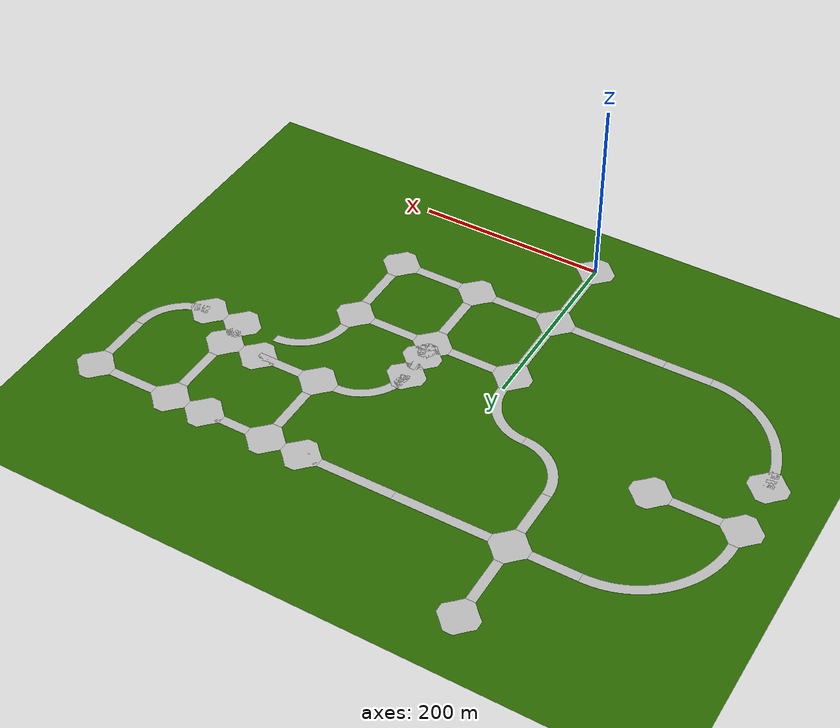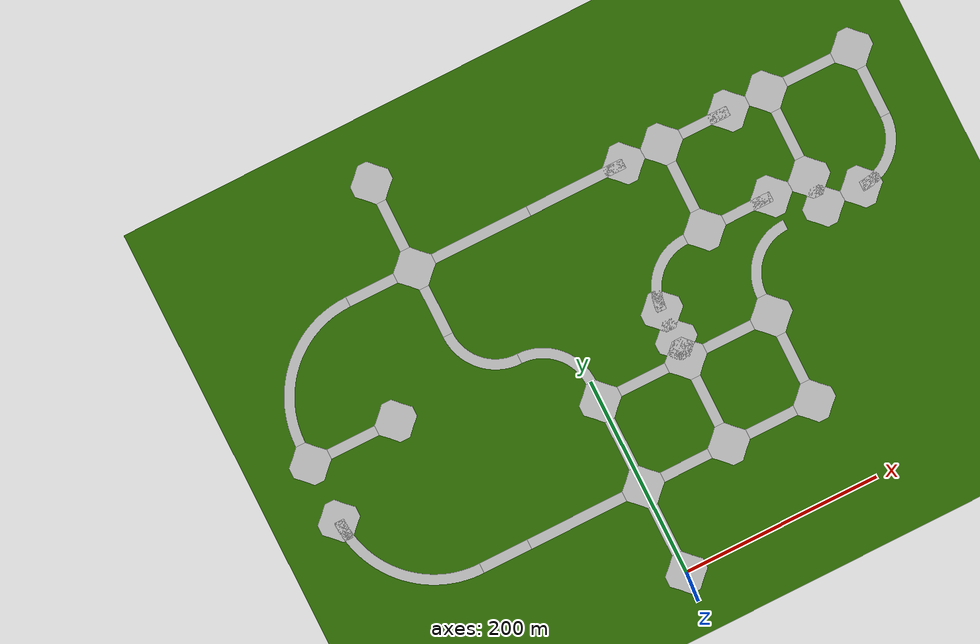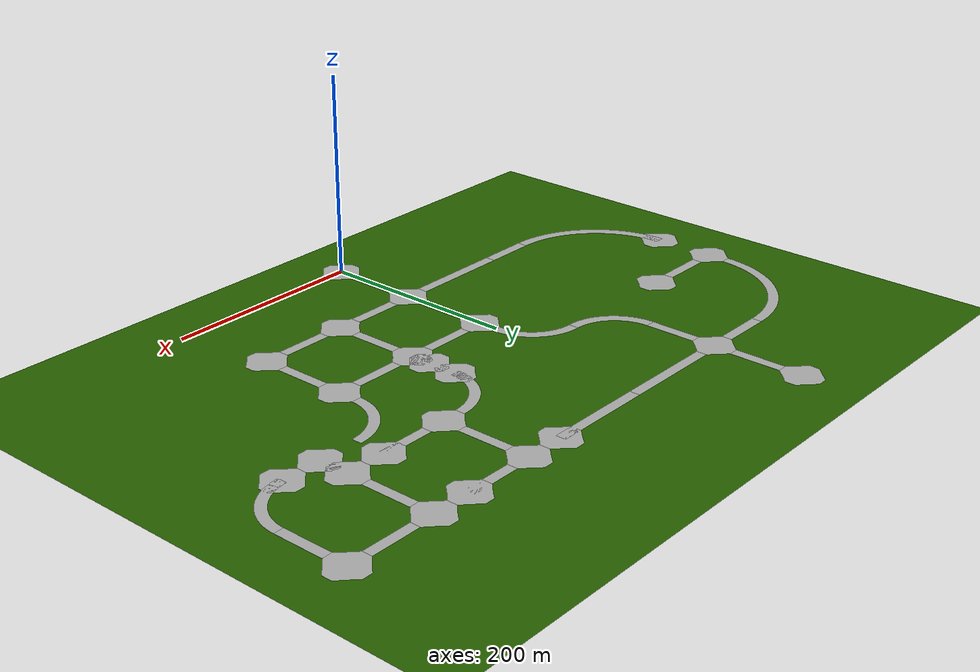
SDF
<sdf version="1.11">
 <world name="empty">
  <plugin name="gz::sim::systems::Physics" filename="gz-sim-physics-system"/>
  <plugin name="gz::sim::systems::UserCommands" filename="gz-sim-user-commands-system"/>
  <plugin name="gz::sim::systems::SceneBroadcaster" filename="gz-sim-scene-broadcaster-system"/>
  <plugin name="gz::sim::systems::Contact" filename="gz-sim-contact-system"/>
  <plugin name="gz::sim::systems::Sensors" filename="gz-sim-sensors-system">
   <render_engine>ogre</render_engine>
  </plugin>
  <physics name="1ms" type="ignored">
   <max_step_size>0.001</max_step_size>
   <real_time_factor>1</real_time_factor>
   <real_time_update_rate>1000</real_time_update_rate>
  </physics>
  <light name="sun" type="directional">
   <pose>0 0 10 0 -0 0</pose>
   <intensity>1</intensity>
   <direction>-0.5 0.1 -0.9</direction>
   <diffuse>0.8 0.8 0.8 1</diffuse>
   <specular>0.2 0.2 0.2 1</specular>
   <attenuation>
    <range>1000</range>
    <linear>0.01</linear>
    <constant>0.90000000000000002</constant>
    <quadratic>0.001</quadratic>
   </attenuation>
   <spot><inner_angle>0</inner_angle><outer_angle>0</outer_angle><falloff>0</falloff></spot>
  </light>
  <scene>
   <ambient>0.4 0.4 0.4 1</ambient>
   <background>0.529 0.808 0.98 1</background>
   <shadows>false</shadows>
   <grid>false</grid>
  </scene>
  <model name="ground_plane">
   <static>true</static>
   <link name="link">
    <collision name="collision">
     <geometry><plane><normal>0 0 1</normal><size>1000 1000</size></plane></geometry>
    </collision>
    <visual name="visual">
     <geometry><plane><normal>0 0 1</normal><size>1000 1000</size></plane></geometry>
     <material>
      <ambient>0.164 0.405 0.0 1</ambient>
      <diffuse>0.164 0.405 0.0 1</diffuse>
      <specular>0.8 0.8 0.8 1</specular>
     </material>
    </visual>
    <pose>0 100 0 0 -0 0</pose>
    <inertial>
     <pose>0 100 0 0 -0 0</pose>
     <mass>1</mass>
     <inertia><ixx>1</ixx><ixy>0</ixy><ixz>0</ixz><iyy>1</iyy><iyz>0</iyz><izz>1</izz></inertia>
    </inertial>
   </link>
   <pose>0 100 0 0 -0 0</pose>
  </model>
  <plugin filename="gz-sim-imu-system" name="gz::sim::systems::Imu"/>
  <gravity>0 0 -9.8</gravity>
  <magnetic_field>6e-06 2.3e-05 -4.2e-05</magnetic_field>
  <atmosphere type="adiabatic"/>
  <plugin filename="gz-sim-navsat-system" name="gz::sim::systems::NavSat"/>
  <spherical_coordinates>
   <surface_model>EARTH_WGS84</surface_model>
   <world_frame_orientation>ENU</world_frame_orientation>
   <latitude_deg>42.672</latitude_deg>
   <longitude_deg>-83.215570</longitude_deg>
   <elevation>0.0</elevation>
   <heading_deg>0.0</heading_deg>
  </spherical_coordinates>
  <model name="intersection0">
   <static>true</static>
   <include merge="true">
    <uri>package://ece5532_gazebo/models/intersection</uri>
    <params>
     <visual element_id="road::road_visual" action="modify">
      <geometry>
       <mesh><uri>package://ece5532_gazebo/models/intersection/meshes/intersection.obj</uri></mesh>
      </geometry>
     </visual>
     <collision element_id="road::road_collision" action="modify">
      <geometry>
       <mesh><uri>package://ece5532_gazebo/models/intersection/meshes/intersection.obj</uri></mesh>
      </geometry>
     </collision>
    </params>
   </include>
  </model>
  <model name="intersection1">
   <static>true</static>
   <pose>0 90 0 0 0 0</pose>
   <include merge="true">
    <uri>package://ece5532_gazebo/models/intersection</uri>
    <params>
     <visual element_id="road::road_visual" action="modify">
      <geometry>
       <mesh><uri>package://ece5532_gazebo/models/intersection/meshes/intersection.obj</uri></mesh>
      </geometry>
     </visual>
     <collision element_id="road::road_collision" action="modify">
      <geometry>
       <mesh><uri>package://ece5532_gazebo/models/intersection/meshes/intersection.obj</uri></mesh>
      </geometry>
     </collision>
    </params>
   </include>
  </model>
  <model name="intersection2">
   <static>true</static>
   <pose>0 180 0 0 0 0</pose>
   <include merge="true">
    <uri>package://ece5532_gazebo/models/intersection</uri>
    <params>
     <visual element_id="road::road_visual" action="modify">
      <geometry>
       <mesh><uri>package://ece5532_gazebo/models/intersection/meshes/intersection.obj</uri></mesh>
      </geometry>
     </visual>
     <collision element_id="road::road_collision" action="modify">
      <geometry>
       <mesh><uri>package://ece5532_gazebo/models/intersection/meshes/intersection.obj</uri></mesh>
      </geometry>
     </collision>
    </params>
   </include>
  </model>
  <model name="intersection3">
   <static>true</static>
   <pose>-100 370 0 0 0 0</pose>
   <include merge="true">
    <uri>package://ece5532_gazebo/models/intersection</uri>
    <params>
     <visual element_id="road::road_visual" action="modify">
      <geometry>
       <mesh><uri>package://ece5532_gazebo/models/intersection/meshes/intersection.obj</uri></mesh>
      </geometry>
     </visual>
     <collision element_id="road::road_collision" action="modify">
      <geometry>
       <mesh><uri>package://ece5532_gazebo/models/intersection/meshes/intersection.obj</uri></mesh>
      </geometry>
     </collision>
    </params>
   </include>
  </model>
  <model name="intersection4">
   <static>true</static>
   <pose>-100 460 0 0 0 0</pose>
   <include merge="true">
    <uri>package://ece5532_gazebo/models/intersection</uri>
    <params>
     <visual element_id="road::road_visual" action="modify">
      <geometry>
       <mesh><uri>package://ece5532_gazebo/models/intersection/meshes/intersection.obj</uri></mesh>
      </geometry>
     </visual>
     <collision element_id="road::road_collision" action="modify">
      <geometry>
       <mesh><uri>package://ece5532_gazebo/models/intersection/meshes/intersection.obj</uri></mesh>
      </geometry>
     </collision>
    </params>
   </include>
  </model>
  <model name="intersection5">
   <static>true</static>
   <pose>160 370 0 0 0 0</pose>
   <include merge="true">
    <uri>package://ece5532_gazebo/models/intersection</uri>
    <params>
     <visual element_id="road::road_visual" action="modify">
      <geometry>
       <mesh><uri>package://ece5532_gazebo/models/intersection/meshes/intersection.obj</uri></mesh>
      </geometry>
     </visual>
     <collision element_id="road::road_collision" action="modify">
      <geometry>
       <mesh><uri>package://ece5532_gazebo/models/intersection/meshes/intersection.obj</uri></mesh>
      </geometry>
     </collision>
    </params>
   </include>
  </model>
  <model name="intersection6">
   <static>true</static>
   <pose>160 280 0 0 0 0</pose>
   <include merge="true">
    <uri>package://ece5532_gazebo/models/intersection</uri>
    <params>
     <visual element_id="road::road_visual" action="modify">
      <geometry>
       <mesh><uri>package://ece5532_gazebo/models/intersection/meshes/intersection.obj</uri></mesh>
      </geometry>
     </visual>
     <collision element_id="road::road_collision" action="modify">
      <geometry>
       <mesh><uri>package://ece5532_gazebo/models/intersection/meshes/intersection.obj</uri></mesh>
      </geometry>
     </collision>
    </params>
   </include>
  </model>
  <model name="intersection7">
   <static>true</static>
   <pose>270 370 0 0 0 0</pose>
   <include merge="true">
    <uri>package://ece5532_gazebo/models/intersection</uri>
    <params>
     <visual element_id="road::road_visual" action="modify">
      <geometry>
       <mesh><uri>package://ece5532_gazebo/models/intersection/meshes/intersection.obj</uri></mesh>
      </geometry>
     </visual>
     <collision element_id="road::road_collision" action="modify">
      <geometry>
       <mesh><uri>package://ece5532_gazebo/models/intersection/meshes/intersection.obj</uri></mesh>
      </geometry>
     </collision>
    </params>
   </include>
  </model>
  <model name="intersection8">
   <static>true</static>
   <pose>360 370 0 0 0 0</pose>
   <include merge="true">
    <uri>package://ece5532_gazebo/models/intersection</uri>
    <params>
     <visual element_id="road::road_visual" action="modify">
      <geometry>
       <mesh><uri>package://ece5532_gazebo/models/intersection/meshes/intersection.obj</uri></mesh>
      </geometry>
     </visual>
     <collision element_id="road::road_collision" action="modify">
      <geometry>
       <mesh><uri>package://ece5532_gazebo/models/intersection/meshes/intersection.obj</uri></mesh>
      </geometry>
     </collision>
    </params>
   </include>
  </model>
  <model name="intersection9">
   <static>true</static>
   <pose>270 280 0 0 0 0</pose>
   <include merge="true">
    <uri>package://ece5532_gazebo/models/intersection</uri>
    <params>
     <visual element_id="road::road_visual" action="modify">
      <geometry>
       <mesh><uri>package://ece5532_gazebo/models/intersection/meshes/intersection.obj</uri></mesh>
      </geometry>
     </visual>
     <collision element_id="road::road_collision" action="modify">
      <geometry>
       <mesh><uri>package://ece5532_gazebo/models/intersection/meshes/intersection.obj</uri></mesh>
      </geometry>
     </collision>
    </params>
   </include>
  </model>
  <model name="intersection10">
   <static>true</static>
   <pose>180 180 0 0 0 0</pose>
   <include merge="true">
    <uri>package://ece5532_gazebo/models/intersection</uri>
    <params>
     <visual element_id="road::road_visual" action="modify">
      <geometry>
       <mesh><uri>package://ece5532_gazebo/models/intersection/meshes/intersection.obj</uri></mesh>
      </geometry>
     </visual>
     <collision element_id="road::road_collision" action="modify">
      <geometry>
       <mesh><uri>package://ece5532_gazebo/models/intersection/meshes/intersection.obj</uri></mesh>
      </geometry>
     </collision>
    </params>
   </include>
  </model>
  <model name="intersection11">
   <static>true</static>
   <pose>180 90 0 0 0 0</pose>
   <include merge="true">
    <uri>package://ece5532_gazebo/models/intersection</uri>
    <params>
     <visual element_id="road::road_visual" action="modify">
      <geometry>
       <mesh><uri>package://ece5532_gazebo/models/intersection/meshes/intersection.obj</uri></mesh>
      </geometry>
     </visual>
     <collision element_id="road::road_collision" action="modify">
      <geometry>
       <mesh><uri>package://ece5532_gazebo/models/intersection/meshes/intersection.obj</uri></mesh>
      </geometry>
     </collision>
    </params>
   </include>
  </model>
  <model name="intersection12">
   <static>true</static>
   <pose>90 90 0 0 0 0</pose>
   <include merge="true">
    <uri>package://ece5532_gazebo/models/intersection</uri>
    <params>
     <visual element_id="road::road_visual" action="modify">
      <geometry>
       <mesh><uri>package://ece5532_gazebo/models/intersection/meshes/intersection.obj</uri></mesh>
      </geometry>
     </visual>
     <collision element_id="road::road_collision" action="modify">
      <geometry>
       <mesh><uri>package://ece5532_gazebo/models/intersection/meshes/intersection.obj</uri></mesh>
      </geometry>
     </collision>
    </params>
   </include>
  </model>
  <model name="intersection13">
   <static>true</static>
   <pose>90 180 0 0 0 0</pose>
   <include merge="true">
    <uri>package://ece5532_gazebo/models/intersection</uri>
    <params>
     <visual element_id="road::road_visual" action="modify">
      <geometry>
       <mesh><uri>package://ece5532_gazebo/models/intersection/meshes/intersection.obj</uri></mesh>
      </geometry>
     </visual>
     <collision element_id="road::road_collision" action="modify">
      <geometry>
       <mesh><uri>package://ece5532_gazebo/models/intersection/meshes/intersection.obj</uri></mesh>
      </geometry>
     </collision>
    </params>
   </include>
  </model>
  <model name="intersection14">
   <static>true</static>
   <pose>-270 250 0 0 0 0</pose>
   <include merge="true">
    <uri>package://ece5532_gazebo/models/intersection</uri>
    <params>
     <visual element_id="road::road_visual" action="modify">
      <geometry>
       <mesh><uri>package://ece5532_gazebo/models/intersection/meshes/intersection.obj</uri></mesh>
      </geometry>
     </visual>
     <collision element_id="road::road_collision" action="modify">
      <geometry>
       <mesh><uri>package://ece5532_gazebo/models/intersection/meshes/intersection.obj</uri></mesh>
      </geometry>
     </collision>
    </params>
   </include>
  </model>
  <model name="intersection15">
   <static>true</static>
   <pose>-180 250 0 0 0 0</pose>
   <include merge="true">
    <uri>package://ece5532_gazebo/models/intersection</uri>
    <params>
     <visual element_id="road::road_visual" action="modify">
      <geometry>
       <mesh><uri>package://ece5532_gazebo/models/intersection/meshes/intersection.obj</uri></mesh>
      </geometry>
     </visual>
     <collision element_id="road::road_collision" action="modify">
      <geometry>
       <mesh><uri>package://ece5532_gazebo/models/intersection/meshes/intersection.obj</uri></mesh>
      </geometry>
     </collision>
    </params>
   </include>
  </model>
  <model name="road_segment0">
   <static>true</static>
   <pose>0 20 0 0 0 1.57079632679</pose>
   <include merge="true">
    <uri>package://ece5532_gazebo/models/straight_road_50m</uri>
    <params>
     <visual element_id="road::road_visual" action="modify">
      <geometry>
       <mesh><uri>package://ece5532_gazebo/models/straight_road_50m/meshes/two_way_two_lane.obj</uri></mesh>
      </geometry>
     </visual>
     <collision element_id="road::road_collision" action="modify">
      <geometry>
       <mesh><uri>package://ece5532_gazebo/models/straight_road_50m/meshes/two_way_two_lane.obj</uri></mesh>
      </geometry>
     </collision>
    </params>
   </include>
  </model>
  <model name="road_segment1">
   <static>true</static>
   <pose>0 110 0 0 0 1.57079632679</pose>
   <include merge="true"><uri>package://ece5532_gazebo/models/straight_road_50m</uri></include>
  </model>
  <model name="road_segment2">
   <static>true</static>
   <pose>-50 250 0 0 0 0</pose>
   <include merge="true"><uri>package://ece5532_gazebo/models/curved_road_50m</uri></include>
  </model>
  <model name="road_segment3">
   <static>true</static>
   <pose>-50 250 0 0 0 3.14159265359</pose>
   <include merge="true"><uri>package://ece5532_gazebo/models/curved_road_50m</uri></include>
  </model>
  <model name="road_segment19">
   <static>true</static>
   <pose>-100 300 0 0 0 1.57079632679</pose>
   <include merge="true"><uri>package://ece5532_gazebo/models/straight_road_50m</uri></include>
  </model>
  <model name="road_segment4">
   <static>true</static>
   <pose>-20 90 0 0 0 3.14159265359</pose>
   <include merge="true"><uri>package://ece5532_gazebo/models/straight_road_100m</uri></include>
  </model>
  <model name="road_segment5">
   <static>true</static>
   <pose>-120 90 0 0 0 3.14159265359</pose>
   <include merge="true"><uri>package://ece5532_gazebo/models/straight_road_50m</uri></include>
  </model>
  <model name="road_segment6">
   <static>true</static>
   <pose>-170 90 0 0 0 3.14159265359</pose>
   <include merge="true"><uri>package://ece5532_gazebo/models/curved_road_100m</uri></include>
  </model>
  <model name="road_segment7">
   <static>true</static>
   <pose>-270 190 0 0 0 1.57079632679</pose>
   <include merge="true">
    <uri>package://ece5532_gazebo/models/intersection</uri>
    <params>
     <visual element_id="road::road_visual" action="modify">
      <geometry>
       <mesh><uri>package://ece5532_gazebo/models/intersection/meshes/placeholder.obj</uri></mesh>
      </geometry>
     </visual>
     <collision element_id="road::road_collision" action="modify">
      <geometry>
       <mesh><uri>package://ece5532_gazebo/models/intersection/meshes/placeholder.obj</uri></mesh>
      </geometry>
     </collision>
    </params>
   </include>
  </model>
  <model name="road_segment8">
   <static>true</static>
   <pose>-250 250 0 0 0 0</pose>
   <include merge="true"><uri>package://ece5532_gazebo/models/straight_road_50m</uri></include>
  </model>
  <model name="road_segment9">
   <static>true</static>
   <pose>-270 270 0 0 0 1.57079632679</pose>
   <include merge="true"><uri>package://ece5532_gazebo/models/curved_road_100m</uri></include>
  </model>
  <model name="road_segment10">
   <static>true</static>
   <pose>-170 370 0 0 0 0</pose>
   <include merge="true"><uri>package://ece5532_gazebo/models/straight_road_50m</uri></include>
  </model>
  <model name="road_segment11">
   <static>true</static>
   <pose>-100 390 0 0 0 1.57079632679</pose>
   <include merge="true"><uri>package://ece5532_gazebo/models/straight_road_50m</uri></include>
  </model>
  <model name="road_segment12">
   <static>true</static>
   <pose>-80 370 0 0 0 0</pose>
   <include merge="true"><uri>package://ece5532_gazebo/models/straight_road_100m</uri></include>
  </model>
  <model name="road_segment13">
   <static>true</static>
   <pose>20 370 0 0 0 0</pose>
   <include merge="true"><uri>package://ece5532_gazebo/models/straight_road_100m</uri></include>
  </model>
  <model name="road_segment14">
   <static>true</static>
   <pose>120 370 0 0 0 0</pose>
   <include merge="true">
    <uri>package://ece5532_gazebo/models/intersection</uri>
    <params>
     <visual element_id="road::road_visual" action="modify">
      <geometry>
       <mesh><uri>package://ece5532_gazebo/models/intersection/meshes/half_placeholder.obj</uri></mesh>
      </geometry>
     </visual>
     <collision element_id="road::road_collision" action="modify">
      <geometry>
       <mesh><uri>package://ece5532_gazebo/models/intersection/meshes/half_placeholder.obj</uri></mesh>
      </geometry>
     </collision>
    </params>
   </include>
  </model>
  <model name="road_segment15">
   <static>true</static>
   <pose>160 350 0 0 0 -1.57079632679</pose>
   <include merge="true"><uri>package://ece5532_gazebo/models/straight_road_50m</uri></include>
  </model>
  <model name="road_segment16">
   <static>true</static>
   <pose>180 370 0 0 0 0</pose>
   <include merge="true"><uri>package://ece5532_gazebo/models/straight_road_50m</uri></include>
  </model>
  <model name="road_segment17">
   <static>true</static>
   <pose>230 370 0 0 0 0</pose>
   <include merge="true">
    <uri>package://ece5532_gazebo/models/intersection</uri>
    <params>
     <visual element_id="road::road_visual" action="modify">
      <geometry>
       <mesh><uri>package://ece5532_gazebo/models/intersection/meshes/half_placeholder.obj</uri></mesh>
      </geometry>
     </visual>
     <collision element_id="road::road_collision" action="modify">
      <geometry>
       <mesh><uri>package://ece5532_gazebo/models/intersection/meshes/half_placeholder.obj</uri></mesh>
      </geometry>
     </collision>
    </params>
   </include>
  </model>
  <model name="road_segment18">
   <static>true</static>
   <pose>290 370 0 0 0 0</pose>
   <include merge="true"><uri>package://ece5532_gazebo/models/straight_road_50m</uri></include>
  </model>
  <model name="road_segment20">
   <static>true</static>
   <pose>270 350 0 0 0 -1.57079632679</pose>
   <include merge="true"><uri>package://ece5532_gazebo/models/straight_road_50m</uri></include>
  </model>
  <model name="road_segment21">
   <static>true</static>
   <pose>20 180 0 0 0 0</pose>
   <include merge="true"><uri>package://ece5532_gazebo/models/straight_road_50m</uri></include>
  </model>
  <model name="road_segment22">
   <static>true</static>
   <pose>110 180 0 0 0 0</pose>
   <include merge="true"><uri>package://ece5532_gazebo/models/straight_road_50m</uri></include>
  </model>
  <model name="road_segment23">
   <static>true</static>
   <pose>90 160 0 0 0 -1.57079632679</pose>
   <include merge="true"><uri>package://ece5532_gazebo/models/straight_road_50m</uri></include>
  </model>
  <model name="road_segment24">
   <static>true</static>
   <pose>180 160 0 0 0 -1.57079632679</pose>
   <include merge="true"><uri>package://ece5532_gazebo/models/straight_road_50m</uri></include>
  </model>
  <model name="road_segment25">
   <static>true</static>
   <pose>110 90 0 0 0 0</pose>
   <include merge="true"><uri>package://ece5532_gazebo/models/straight_road_50m</uri></include>
  </model>
  <model name="road_segment26">
   <static>true</static>
   <pose>180 280 0 0 0 0</pose>
   <include merge="true"><uri>package://ece5532_gazebo/models/straight_road_50m</uri></include>
  </model>
  <model name="road_segment35">
   <static>true</static>
   <pose>230 280 0 0 0 0</pose>
   <include merge="true">
    <uri>package://ece5532_gazebo/models/intersection</uri>
    <params>
     <visual element_id="road::road_visual" action="modify">
      <geometry>
       <mesh><uri>package://ece5532_gazebo/models/intersection/meshes/half_placeholder.obj</uri></mesh>
      </geometry>
     </visual>
     <collision element_id="road::road_collision" action="modify">
      <geometry>
       <mesh><uri>package://ece5532_gazebo/models/intersection/meshes/half_placeholder.obj</uri></mesh>
      </geometry>
     </collision>
    </params>
   </include>
  </model>
  <model name="road_segment27">
   <static>true</static>
   <pose>90 230 0 0 0 1.57079632679</pose>
   <include merge="true"><uri>package://ece5532_gazebo/models/curved_road_50m</uri></include>
  </model>
  <model name="road_segment28">
   <static>true</static>
   <pose>90 230 0 0 0 -1.57079632679</pose>
   <include merge="true">
    <uri>package://ece5532_gazebo/models/intersection</uri>
    <params>
     <visual element_id="road::road_visual" action="modify">
      <geometry>
       <mesh><uri>package://ece5532_gazebo/models/intersection/meshes/half_placeholder.obj</uri></mesh>
      </geometry>
     </visual>
     <collision element_id="road::road_collision" action="modify">
      <geometry>
       <mesh><uri>package://ece5532_gazebo/models/intersection/meshes/half_placeholder.obj</uri></mesh>
      </geometry>
     </collision>
    </params>
   </include>
  </model>
  <model name="road_segment29">
   <static>true</static>
   <pose>90 200 0 0 0 1.57079632679</pose>
   <include merge="true">
    <uri>package://ece5532_gazebo/models/intersection</uri>
    <params>
     <visual element_id="road::road_visual" action="modify">
      <geometry>
       <mesh><uri>package://ece5532_gazebo/models/intersection/meshes/quarter_placeholder.obj</uri></mesh>
      </geometry>
     </visual>
     <collision element_id="road::road_collision" action="modify">
      <geometry>
       <mesh><uri>package://ece5532_gazebo/models/intersection/meshes/quarter_placeholder.obj</uri></mesh>
      </geometry>
     </collision>
    </params>
   </include>
  </model>
  <model name="road_segment30">
   <static>true</static>
   <pose>360 350 0 0 0 -1.57079632679</pose>
   <include merge="true"><uri>package://ece5532_gazebo/models/straight_road_50m</uri></include>
  </model>
  <model name="road_segment31">
   <static>true</static>
   <pose>360 300 0 0 0 -1.57079632679</pose>
   <include merge="true"><uri>package://ece5532_gazebo/models/curved_road_50m</uri></include>
  </model>
  <model name="road_segment32">
   <static>true</static>
   <pose>310 250 0 0 0 3.14159265359</pose>
   <include merge="true">
    <uri>package://ece5532_gazebo/models/intersection</uri>
    <params>
     <visual element_id="road::road_visual" action="modify">
      <geometry>
       <mesh><uri>package://ece5532_gazebo/models/intersection/meshes/placeholder.obj</uri></mesh>
      </geometry>
     </visual>
     <collision element_id="road::road_collision" action="modify">
      <geometry>
       <mesh><uri>package://ece5532_gazebo/models/intersection/meshes/placeholder.obj</uri></mesh>
      </geometry>
     </collision>
    </params>
   </include>
  </model>
  <model name="road_segment33">
   <static>true</static>
   <pose>270 250 0 0 0 3.14159265359</pose>
   <include merge="true">
    <uri>package://ece5532_gazebo/models/intersection</uri>
    <params>
     <visual element_id="road::road_visual" action="modify">
      <geometry>
       <mesh><uri>package://ece5532_gazebo/models/intersection/meshes/placeholder.obj</uri></mesh>
      </geometry>
     </visual>
     <collision element_id="road::road_collision" action="modify">
      <geometry>
       <mesh><uri>package://ece5532_gazebo/models/intersection/meshes/placeholder.obj</uri></mesh>
      </geometry>
     </collision>
    </params>
   </include>
  </model>
  <model name="road_segment34">
   <static>true</static>
   <pose>180 200 0 0 0 1.57079632679</pose>
   <include merge="true"><uri>package://ece5532_gazebo/models/curved_road_50m</uri></include>
  </model>
  <model name="road_segment">
   <static>true</static>
   <pose>20 90 0 0 0 0</pose>
   <include merge="true"><uri>package://ece5532_gazebo/models/straight_road_50m</uri></include>
  </model>
 </world>
</sdf>

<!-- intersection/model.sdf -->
<sdf version='1.11'>
  <model name='intersection'>
    <pose>0 0 0 0 0 0</pose>
    <link name='road'>
      <pose>0 0 0 0 0 0</pose>
      <visual name='road_visual'>
        <pose>0 0 0 0 0 0</pose>
        <geometry>
          <mesh>
            <uri>package://ece5532_gazebo/models/intersection/meshes/intersection.obj</uri>
          </mesh>
        </geometry>
      </visual>
      <collision name='road_collision'>
        <pose>0 0 0 0 0 0</pose>
        <geometry>
          <mesh>
            <uri>package://ece5532_gazebo/models/intersection/meshes/intersection.obj</uri>
          </mesh>
        </geometry>
      </collision>
    </link>
    <static>1</static>
  </model>
</sdf>

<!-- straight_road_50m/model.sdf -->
<sdf version='1.11'>
  <model name='straight_road_50m'>
    <pose>0 0 0 0 0 0</pose>
    <link name='road'>
      <pose>0 0 0 0 0 0</pose>
      <visual name='road_visual'>
        <pose>0 0 0 0 0 0</pose>
        <geometry>
          <mesh>
            <uri>package://ece5532_gazebo/models/straight_road_50m/meshes/two_way_two_lane.obj</uri>
          </mesh>
        </geometry>
      </visual>
      <collision name='road_collision'>
        <pose>0 0 0 0 0 0</pose>
        <geometry>
          <mesh>
            <uri>package://ece5532_gazebo/models/straight_road_50m/meshes/two_way_two_lane.obj</uri>
          </mesh>
        </geometry>
      </collision>
    </link>
    <static>1</static>
  </model>
</sdf>

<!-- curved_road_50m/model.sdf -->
<sdf version='1.11'>
  <model name='curved_road_50m'>
    <pose>0 0 0 0 0 0</pose>
    <link name='road'>
      <pose>0 0 0 0 0 0</pose>
      <visual name='road_visual'>
        <pose>0 0 0 0 0 0</pose>
        <geometry>
          <mesh>
            <uri>package://ece5532_gazebo/models/curved_road_50m/meshes/two_way_two_lane.obj</uri>
          </mesh>
        </geometry>
      </visual>
      <collision name='road_collision'>
        <pose>0 0 0 0 0 0</pose>
        <geometry>
          <mesh>
            <uri>package://ece5532_gazebo/models/curved_road_50m/meshes/two_way_two_lane.obj</uri>
          </mesh>
        </geometry>
      </collision>
    </link>
    <static>1</static>
  </model>
</sdf>

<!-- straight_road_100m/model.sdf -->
<sdf version='1.11'>
  <model name='straight_road_100m'>
    <pose>0 0 0 0 0 0</pose>
    <link name='road'>
      <pose>0 0 0 0 0 0</pose>
      <visual name='road_visual'>
        <pose>0 0 0 0 0 0</pose>
        <geometry>
          <mesh>
            <uri>package://ece5532_gazebo/models/straight_road_100m/meshes/two_way_two_lane.obj</uri>
          </mesh>
        </geometry>
      </visual>
      <collision name='road_collision'>
        <pose>0 0 0 0 0 0</pose>
        <geometry>
          <mesh>
            <uri>package://ece5532_gazebo/models/straight_road_100m/meshes/two_way_two_lane.obj</uri>
          </mesh>
        </geometry>
      </collision>
    </link>
    <static>1</static>
  </model>
</sdf>

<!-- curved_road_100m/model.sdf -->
<sdf version='1.11'>
  <model name='curved_road_100m'>
    <pose>0 0 0 0 0 0</pose>
    <link name='road'>
      <pose>0 0 0 0 0 0</pose>
      <visual name='road_visual'>
        <pose>0 0 0 0 0 0</pose>
        <geometry>
          <mesh>
            <uri>package://ece5532_gazebo/models/curved_road_100m/meshes/two_way_two_lane.obj</uri>
          </mesh>
        </geometry>
      </visual>
      <collision name='road_collision'>
        <pose>0 0 0 0 0 0</pose>
        <geometry>
          <mesh>
            <uri>package://ece5532_gazebo/models/curved_road_100m/meshes/two_way_two_lane.obj</uri>
          </mesh>
        </geometry>
      </collision>
    </link>
    <static>1</static>
  </model>
</sdf>
